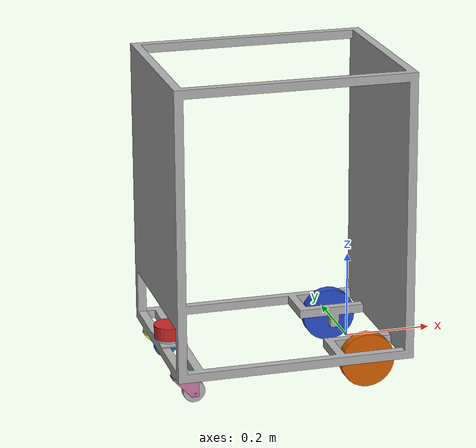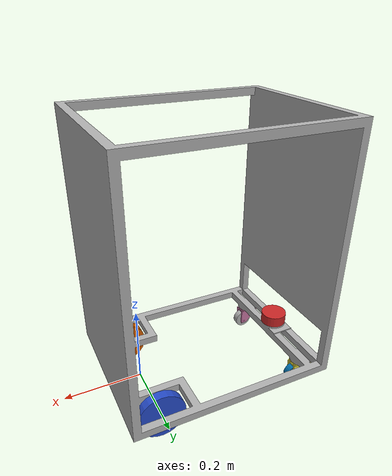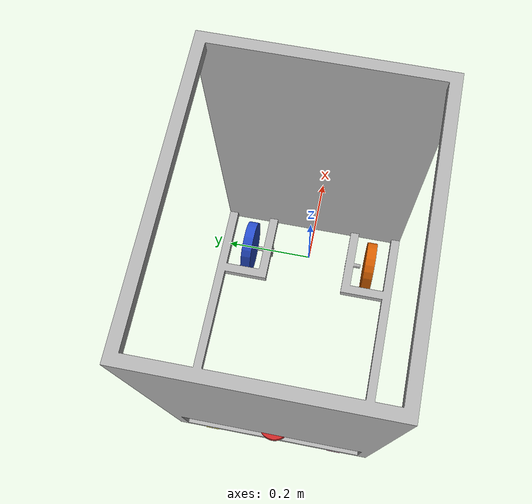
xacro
<?xml version="1.0"?>
<robot xmlns:xacro="http://www.ros.org/wiki/xacro"  name="robot">

    <xacro:arg name="use_ros2_contorl" default="true"/>

    <xacro:include filename="robot_core.xacro"/>

    <xacro:if value="$(arg use_ros2_contorl)">
        <xacro:include filename="ros2_control.xacro"/>
    </xacro:if>

    <xacro:unless value="$(arg use_ros2_contorl)">
        <xacro:include filename="gazebo_control.xacro"/>
    </xacro:unless>

    <xacro:include filename="lidar.xacro"/>

</robot>

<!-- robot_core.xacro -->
<robot xmlns:xacro="htpp://www.ros.org/wiki/xacro">

    <xacro:include filename="inertial_macros.xacro"/>
    <material name="silver">
        <color rgba="0.700 0.700 0.700 1.000"/>
    </material>

    <material name="orange">
        <color rgba="1.000 0.300 0.100 1.000"/>
    </material>

    <material name="blue">
        <color rgba="0.200 0.200 1.000 1.000"/>
    </material>

    <material name="black">
        <color rgba="0.000 0.000 0.000 1.000"/>
    </material>

    <material name="yellow">
        <color rgba="1.000 0.600 0.000 1.000"/>
    </material>

    <!-- BASE LINK -->
    <link name="base_link">

    </link>

    <!-- CHASSIS LINK -->
    <joint name="chassis_joint" type="fixed">
        <parent link="base_link"/>
        <child link="chassis"/>
        <origin xyz="-0.452 0 0"/>
    </joint>

    <link name="chassis">
        <visual>
            <origin xyz="0.272 0 0.016"/>
            <geometry>
                <mesh filename="file://$(find my_diff_drive_bot)/meshes/chassis_link.stl" scale="0.001 0.001 0.001"/>
            </geometry>
            <material name="silver"/>
        </visual>

        <collision>
            <origin xyz="0.272 0 0.016"/>
            <geometry>
                <mesh filename="file://$(find my_diff_drive_bot)/meshes/chassis_link.stl" scale="0.001 0.001 0.001"/>
            </geometry>
            <material name="silver"/>
        </collision>

        <xacro:inertial_box mass="10.0" x="0.544" y="0.422" z="0.656">
            <origin xyz="0.272 0 0.328" rpy="0 0 0"/>
        </xacro:inertial_box>
    </link>

    <gazebo reference="chassis">
        <material>Gazebo/Yellow</material>

    </gazebo>

    <!-- LEFT WHEEL LINK -->
    <joint name="left_wheel_joint" type="continuous">
        <parent link="base_link"/>
        <child link="left_wheel"/>
        <origin xyz="0 0.148 0" rpy="-${pi/2} 0 0"/>
        <axis xyz="0 0 1"/>
    </joint>

    <link name="left_wheel">
        <visual>
            <geometry>
                <cylinder radius="0.0625" length="0.023"/>
            </geometry>
            <materaial name="black"/>
        </visual>

        <collision>
            <geometry>
                <cylinder radius="0.0625" length="0.023"/>
            </geometry>
            <materaial name="black"/>
        </collision>

        <xacro:inertial_cylinder mass="0.15" length="0.023" radius="0.0625">
            <origin xyz="0 0 0" rpy="0 0 0"/>
        </xacro:inertial_cylinder>

    </link>

    <gazebo reference="left_wheel">
        <material>Gazebo/Blue</material>
    </gazebo>

    <!-- LEFT CASTER WHEEL LINK -->

    <joint name="left_caster_joint" type="continuous">
        <parent link="base_link"/>
        <child link="left_caster_link"/>
        <origin xyz="-0.420 0.139 0.007" rpy="-${pi} 0 0"/>
        <axis xyz="0 0 1"/>
    </joint>

    <link name="left_caster_link">
        <materaial name="black"/>
        <visual>
            <origin xyz="0 0 0" rpy="-${pi} 0 0"/>
            <geometry>
                <mesh filename="file://$(find my_diff_drive_bot)/meshes/caster_link.stl" scale="0.001 0.001 0.001"/>
            </geometry>

        </visual>

        <collision>
            <origin xyz="0 0 0" rpy="-${pi} 0 0"/>
            <geometry>
                <mesh filename="file://$(find my_diff_drive_bot)/meshes/caster_link.stl" scale="0.001 0.001 0.001"/>
            </geometry>
            <materaial name="black"/>
        </collision>

        <xacro:inertial_cylinder mass="0.1" length="0.090" radius="0.03">
            <origin xyz="0 0 0" rpy="0 0 0"/>
        </xacro:inertial_cylinder>

    </link>

    <!-- LEFT CASTER WHEEL -->
    <joint name="left_caster_wheel_joint" type="continuous">
        <parent link="left_caster_link"/>
        <child link="left_caster_wheel"/>
        <origin xyz="0.02 0 0.04" rpy="-${pi/2} 0 0"/>
        <axis xyz="0 0 1"/>

    </joint>

    <link name="left_caster_wheel">
        <visual>
            <geometry>
                <cylinder radius="0.025" length="0.018"/>
            </geometry>
        </visual>

        <collision>
            <geometry>
                <cylinder radius="0.025" length="0.018"/>
            </geometry>
        </collision>

        <xacro:inertial_cylinder mass="0.1" length="0.018" radius="0.025">
            <origin xyz="0 0 0" rpy="0 0 0"/>
        </xacro:inertial_cylinder>
    </link>

    <!-- RIGHT WHEEL LINK -->
    <joint name="right_wheel_joint" type="continuous">
        <parent link="base_link"/>
        <child link="right_wheel"/>
        <origin xyz="0 -0.148 0" rpy="${pi/2} 0 0"/>
        <axis xyz="0 0 -1"/>
    </joint>

    <link name="right_wheel">
        <visual>
            <geometry>
                <cylinder radius="0.0625" length="0.023"/>
            </geometry>
            <materaial name="black"/>
        </visual>

        <collision>
            <geometry>
                <cylinder radius="0.0625" length="0.023"/>
            </geometry>
            <materaial name="black"/>
        </collision>

        <xacro:inertial_cylinder mass="0.15" length="0.023" radius="0.0625">
            <origin xyz="0 0 0" rpy="0 0 0"/>
        </xacro:inertial_cylinder>
    </link>

      <!-- RIGHT CASTER WHEEL LINK -->

      <joint name="right_caster_joint" type="continuous">
        <parent link="base_link"/>
        <child link="right_caster_link"/>
        <origin xyz="-0.420 -0.139 0.007" rpy="-${pi} 0 0"/>
        <axis xyz="0 0 1"/>
    </joint>

    <link name="right_caster_link">
        <materaial name="black"/>
        <visual>
            <origin xyz="0 0 0" rpy="-${pi} 0 0"/>
            <geometry>
                <mesh filename="file://$(find my_diff_drive_bot)/meshes/caster_link.stl" scale="0.001 0.001 0.001"/>
            </geometry>

        </visual>

        <collision>
            <origin xyz="0 0 0" rpy="-${pi} 0 0"/>
            <geometry>
                <mesh filename="file://$(find my_diff_drive_bot)/meshes/caster_link.stl" scale="0.001 0.001 0.001"/>
            </geometry>
            <materaial name="black"/>
        </collision>

        <xacro:inertial_cylinder mass="0.1" length="0.090" radius="0.03">
            <origin xyz="0 0 0" rpy="0 0 0"/>
        </xacro:inertial_cylinder>

    </link>

    <!-- RIGHT CASTER WHEEL -->
    <joint name="right_caster_wheel_joint" type="continuous">
        <parent link="right_caster_link"/>
        <child link="right_caster_wheel"/>
        <origin xyz="0.02 0 0.04" rpy="-${pi/2} 0 0"/>
        <axis xyz="0 0 1"/>

    </joint>

    <link name="right_caster_wheel">
        <visual>
            <geometry>
                <cylinder radius="0.025" length="0.018"/>
            </geometry>
        </visual>

        <collision>
            <geometry>
                <cylinder radius="0.025" length="0.018"/>
            </geometry>
        </collision>

        <xacro:inertial_cylinder mass="0.1" length="0.018" radius="0.025">
            <origin xyz="0 0 0" rpy="0 0 0"/>
        </xacro:inertial_cylinder>
    </link>

</robot>

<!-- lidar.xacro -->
<robot xmlns:xacro="htpp://www.ros.org/wiki/xacro">

    <joint name="lidar_joint" type="fixed">
        <parent link="chassis"/>
        <child link="lidar_frame"/>
        <origin xyz="0.032 0 0.059" rpy="0 0 0"/>
    </joint>

    <link name="lidar_frame">

        <visual>
            <geometry>
                <cylinder radius="0.035" length="0.03"/>
            </geometry>
            <materaial name="orange"/>
        </visual>

        <collision>
            <geometry>
                <cylinder radius="0.035" length="0.03"/>
            </geometry>
            <materaial name="orange"/>
        </collision>

        <xacro:inertial_cylinder mass="0.001" length="0.03" radius="0.035">
            <origin xyz="0 0 0" rpy="0 0 0"/>
        </xacro:inertial_cylinder>

    </link>

    <gazebo reference="lidar_frame">
        <material>Gazebo/Red</material>
        <sensor name="lidar" type="ray">
            <pose>0 0 0 0 0 0</pose>
            <visualize>true</visualize>
            <update_rate>10</update_rate>
            <ray>
                <scan>
                    <horizontal>
                        <sample>360</sample>
                        <resolution>1</resolution>
                        <min_angle>-3.14</min_angle>
                        <max_angle>3.14</max_angle>
                    </horizontal>
                </scan>
                <range>
                    <min>0.3</min>
                    <max>12</max>
                    <resolution>0.01</resolution>
                </range>
            </ray>
            <plugin name="lidar_controller" filename="libgazebo_ros_ray_sensor.so">
                <ros>
                    <argument>~/out:=scan</argument>
                </ros>
                <output_type>sensor_msgs/LaserScan</output_type>
                <frame_name>lidar_frame</frame_name>
            </plugin>
        </sensor>
    </gazebo>
</robot>
